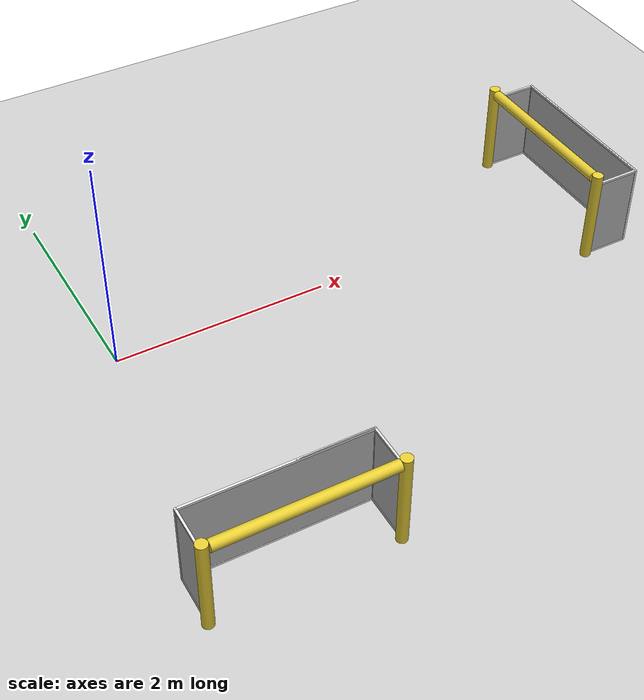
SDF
<sdf version="1.6">
 <world name="default">
  <model name="ground_plane">
   <static>1</static>
   <link name="link">
    <collision name="collision">
     <geometry><plane><normal>0 0 1</normal><size>100 100</size></plane></geometry>
     <surface>
      <contact><collide_bitmask>65535</collide_bitmask></contact>
      <friction><ode><mu>100</mu><mu2>50</mu2></ode></friction>
     </surface>
    </collision>
    <visual name="visual">
     <cast_shadows>0</cast_shadows>
     <geometry><plane><normal>0 0 1</normal><size>100 100</size></plane></geometry>
     <material>
      <script><uri>file://media/materials/scripts/gazebo.material</uri><name>Gazebo/Grey</name></script>
     </material>
    </visual>
   </link>
  </model>
  <model name="RoboCup 2014 SPL Goal">
   <static>1</static>
   <link name="left_post">
    <pose>0 0.8 0.45 0 -0 0</pose>
    <collision name="collision">
     <geometry><cylinder><radius>0.05</radius><length>0.9</length></cylinder></geometry>
    </collision>
    <visual name="visual">
     <geometry><cylinder><radius>0.05</radius><length>0.9</length></cylinder></geometry>
     <material>
      <script><uri>file://media/materials/scripts/gazebo.material</uri><name>Gazebo/ZincYellow</name></script>
     </material>
    </visual>
   </link>
   <link name="left_support_horiz_lower">
    <pose>0.24 0.8 0.01 0 -0 0</pose>
    <collision name="collision"><geometry><box><size>0.38 0.02 0.02</size></box></geometry></collision>
    <visual name="visual">
     <geometry><box><size>0.38 0.02 0.02</size></box></geometry>
     <material>
      <script><uri>file://media/materials/scripts/gazebo.material</uri><name>Gazebo/White</name></script>
     </material>
    </visual>
   </link>
   <link name="left_support_horiz_upper">
    <pose>0.24 0.8 0.79 0 -0 0</pose>
    <collision name="collision"><geometry><box><size>0.38 0.02 0.02</size></box></geometry></collision>
    <visual name="visual">
     <geometry><box><size>0.38 0.02 0.02</size></box></geometry>
     <material>
      <script><uri>file://media/materials/scripts/gazebo.material</uri><name>Gazebo/White</name></script>
     </material>
    </visual>
   </link>
   <link name="left_support_vertical">
    <pose>0.44 0.8 0.4 3.14159 1.57079 3.14159</pose>
    <collision name="collision"><geometry><box><size>0.8 0.02 0.02</size></box></geometry></collision>
    <visual name="visual">
     <geometry><box><size>0.8 0.02 0.02</size></box></geometry>
     <material>
      <script><uri>file://media/materials/scripts/gazebo.material</uri><name>Gazebo/White</name></script>
     </material>
    </visual>
   </link>
   <link name="right_support_horiz_lower">
    <pose>0.24 -0.8 0.01 0 -0 0</pose>
    <collision name="collision"><geometry><box><size>0.38 0.02 0.02</size></box></geometry></collision>
    <visual name="visual">
     <geometry><box><size>0.38 0.02 0.02</size></box></geometry>
     <material>
      <script><uri>file://media/materials/scripts/gazebo.material</uri><name>Gazebo/White</name></script>
     </material>
    </visual>
   </link>
   <link name="right_support_horiz_upper">
    <pose>0.24 -0.8 0.79 0 -0 0</pose>
    <collision name="collision"><geometry><box><size>0.38 0.02 0.02</size></box></geometry></collision>
    <visual name="visual">
     <geometry><box><size>0.38 0.02 0.02</size></box></geometry>
     <material>
      <script><uri>file://media/materials/scripts/gazebo.material</uri><name>Gazebo/White</name></script>
     </material>
    </visual>
   </link>
   <link name="right_support_vertical">
    <pose>0.44 -0.8 0.4 3.14159 1.57079 3.14159</pose>
    <collision name="collision"><geometry><box><size>0.8 0.02 0.02</size></box></geometry></collision>
    <visual name="visual">
     <geometry><box><size>0.8 0.02 0.02</size></box></geometry>
     <material>
      <script><uri>file://media/materials/scripts/gazebo.material</uri><name>Gazebo/White</name></script>
     </material>
    </visual>
   </link>
   <link name="center_support_horiz_lower">
    <pose>0.44 0 0.01 3.14159 1.57079 3.14159</pose>
    <collision name="collision"><geometry><box><size>0.02 1.58 0.02</size></box></geometry></collision>
    <visual name="visual">
     <geometry><box><size>0.02 1.58 0.02</size></box></geometry>
     <material>
      <script><uri>file://media/materials/scripts/gazebo.material</uri><name>Gazebo/White</name></script>
     </material>
    </visual>
   </link>
   <link name="center_support_horiz_upper">
    <pose>0.44 0 0.79 3.14159 1.57079 3.14159</pose>
    <collision name="collision"><geometry><box><size>0.02 1.58 0.02</size></box></geometry></collision>
    <visual name="visual">
     <geometry><box><size>0.02 1.58 0.02</size></box></geometry>
     <material>
      <script><uri>file://media/materials/scripts/gazebo.material</uri><name>Gazebo/White</name></script>
     </material>
    </visual>
   </link>
   <link name="right_post">
    <pose>0 -0.8 0.45 0 -0 0</pose>
    <collision name="collision">
     <geometry><cylinder><radius>0.05</radius><length>0.9</length></cylinder></geometry>
    </collision>
    <visual name="visual">
     <geometry><cylinder><radius>0.05</radius><length>0.9</length></cylinder></geometry>
     <material>
      <script><uri>file://media/materials/scripts/gazebo.material</uri><name>Gazebo/ZincYellow</name></script>
     </material>
    </visual>
   </link>
   <link name="crossbar">
    <pose>0 0 0.85 1.57 1.57 0</pose>
    <collision name="collision">
     <geometry><cylinder><radius>0.05</radius><length>1.5</length></cylinder></geometry>
    </collision>
    <visual name="visual">
     <geometry><cylinder><radius>0.05</radius><length>1.5</length></cylinder></geometry>
     <material>
      <script><uri>file://media/materials/scripts/gazebo.material</uri><name>Gazebo/ZincYellow</name></script>
     </material>
    </visual>
   </link>
   <link name="center_net">
    <pose>0.44 0 0.4 0 -0 0</pose>
    <collision name="collision"><geometry><box><size>0.01 1.6 0.8</size></box></geometry></collision>
    <visual name="visual">
     <geometry><box><size>0.01 1.6 0.8</size></box></geometry>
     <material>
      <script>
       <uri>model://robocup09_spl_field/materials/scripts/</uri>
       <uri>model://robocup09_spl_field/materials/textures/</uri>
       <name>RoboCup/Net</name>
      </script>
     </material>
    </visual>
   </link>
   <link name="left_net">
    <pose>0.24 0.8 0.4 0 -0 0</pose>
    <collision name="collision"><geometry><box><size>0.38 0.01 0.76</size></box></geometry></collision>
    <visual name="visual">
     <geometry><box><size>0.38 0.01 0.76</size></box></geometry>
     <material>
      <script>
       <uri>model://robocup09_spl_field/materials/scripts/</uri>
       <uri>model://robocup09_spl_field/materials/textures/</uri>
       <name>RoboCup/Net</name>
      </script>
     </material>
    </visual>
   </link>
   <link name="right_net">
    <pose>0.24 -0.8 0.4 0 -0 0</pose>
    <collision name="collision"><geometry><box><size>0.38 0.01 0.76</size></box></geometry></collision>
    <visual name="visual">
     <geometry><box><size>0.38 0.01 0.76</size></box></geometry>
     <material>
      <script>
       <uri>model://robocup09_spl_field/materials/scripts/</uri>
       <uri>model://robocup09_spl_field/materials/textures/</uri>
       <name>RoboCup/Net</name>
      </script>
     </material>
    </visual>
   </link>
   <pose>4.37127 0.011795 0 0 -0 0</pose>
  </model>
  <model name="RoboCup 2014 SPL Goal_0">
   <static>1</static>
   <link name="left_post">
    <pose>0 0.8 0.45 0 -0 0</pose>
    <collision name="collision">
     <geometry><cylinder><radius>0.05</radius><length>0.9</length></cylinder></geometry>
    </collision>
    <visual name="visual">
     <geometry><cylinder><radius>0.05</radius><length>0.9</length></cylinder></geometry>
     <material>
      <script><uri>file://media/materials/scripts/gazebo.material</uri><name>Gazebo/ZincYellow</name></script>
     </material>
    </visual>
   </link>
   <link name="left_support_horiz_lower">
    <pose>0.24 0.8 0.01 0 -0 0</pose>
    <collision name="collision"><geometry><box><size>0.38 0.02 0.02</size></box></geometry></collision>
    <visual name="visual">
     <geometry><box><size>0.38 0.02 0.02</size></box></geometry>
     <material>
      <script><uri>file://media/materials/scripts/gazebo.material</uri><name>Gazebo/White</name></script>
     </material>
    </visual>
   </link>
   <link name="left_support_horiz_upper">
    <pose>0.24 0.8 0.79 0 -0 0</pose>
    <collision name="collision"><geometry><box><size>0.38 0.02 0.02</size></box></geometry></collision>
    <visual name="visual">
     <geometry><box><size>0.38 0.02 0.02</size></box></geometry>
     <material>
      <script><uri>file://media/materials/scripts/gazebo.material</uri><name>Gazebo/White</name></script>
     </material>
    </visual>
   </link>
   <link name="left_support_vertical">
    <pose>0.44 0.8 0.4 3.14159 1.57079 3.14159</pose>
    <collision name="collision"><geometry><box><size>0.8 0.02 0.02</size></box></geometry></collision>
    <visual name="visual">
     <geometry><box><size>0.8 0.02 0.02</size></box></geometry>
     <material>
      <script><uri>file://media/materials/scripts/gazebo.material</uri><name>Gazebo/White</name></script>
     </material>
    </visual>
   </link>
   <link name="right_support_horiz_lower">
    <pose>0.24 -0.8 0.01 0 -0 0</pose>
    <collision name="collision"><geometry><box><size>0.38 0.02 0.02</size></box></geometry></collision>
    <visual name="visual">
     <geometry><box><size>0.38 0.02 0.02</size></box></geometry>
     <material>
      <script><uri>file://media/materials/scripts/gazebo.material</uri><name>Gazebo/White</name></script>
     </material>
    </visual>
   </link>
   <link name="right_support_horiz_upper">
    <pose>0.24 -0.8 0.79 0 -0 0</pose>
    <collision name="collision"><geometry><box><size>0.38 0.02 0.02</size></box></geometry></collision>
    <visual name="visual">
     <geometry><box><size>0.38 0.02 0.02</size></box></geometry>
     <material>
      <script><uri>file://media/materials/scripts/gazebo.material</uri><name>Gazebo/White</name></script>
     </material>
    </visual>
   </link>
   <link name="right_support_vertical">
    <pose>0.44 -0.8 0.4 3.14159 1.57079 3.14159</pose>
    <collision name="collision"><geometry><box><size>0.8 0.02 0.02</size></box></geometry></collision>
    <visual name="visual">
     <geometry><box><size>0.8 0.02 0.02</size></box></geometry>
     <material>
      <script><uri>file://media/materials/scripts/gazebo.material</uri><name>Gazebo/White</name></script>
     </material>
    </visual>
   </link>
   <link name="center_support_horiz_lower">
    <pose>0.44 0 0.01 3.14159 1.57079 3.14159</pose>
    <collision name="collision"><geometry><box><size>0.02 1.58 0.02</size></box></geometry></collision>
    <visual name="visual">
     <geometry><box><size>0.02 1.58 0.02</size></box></geometry>
     <material>
      <script><uri>file://media/materials/scripts/gazebo.material</uri><name>Gazebo/White</name></script>
     </material>
    </visual>
   </link>
   <link name="center_support_horiz_upper">
    <pose>0.44 0 0.79 3.14159 1.57079 3.14159</pose>
    <collision name="collision"><geometry><box><size>0.02 1.58 0.02</size></box></geometry></collision>
    <visual name="visual">
     <geometry><box><size>0.02 1.58 0.02</size></box></geometry>
     <material>
      <script><uri>file://media/materials/scripts/gazebo.material</uri><name>Gazebo/White</name></script>
     </material>
    </visual>
   </link>
   <link name="right_post">
    <pose>0 -0.8 0.45 0 -0 0</pose>
    <collision name="collision">
     <geometry><cylinder><radius>0.05</radius><length>0.9</length></cylinder></geometry>
    </collision>
    <visual name="visual">
     <geometry><cylinder><radius>0.05</radius><length>0.9</length></cylinder></geometry>
     <material>
      <script><uri>file://media/materials/scripts/gazebo.material</uri><name>Gazebo/ZincYellow</name></script>
     </material>
    </visual>
   </link>
   <link name="crossbar">
    <pose>0 0 0.85 1.57 1.57 0</pose>
    <collision name="collision">
     <geometry><cylinder><radius>0.05</radius><length>1.5</length></cylinder></geometry>
    </collision>
    <visual name="visual">
     <geometry><cylinder><radius>0.05</radius><length>1.5</length></cylinder></geometry>
     <material>
      <script><uri>file://media/materials/scripts/gazebo.material</uri><name>Gazebo/ZincYellow</name></script>
     </material>
    </visual>
   </link>
   <link name="center_net">
    <pose>0.44 0 0.4 0 -0 0</pose>
    <collision name="collision"><geometry><box><size>0.01 1.6 0.8</size></box></geometry></collision>
    <visual name="visual">
     <geometry><box><size>0.01 1.6 0.8</size></box></geometry>
     <material>
      <script>
       <uri>model://robocup09_spl_field/materials/scripts/</uri>
       <uri>model://robocup09_spl_field/materials/textures/</uri>
       <name>RoboCup/Net</name>
      </script>
     </material>
    </visual>
   </link>
   <link name="left_net">
    <pose>0.24 0.8 0.4 0 -0 0</pose>
    <collision name="collision"><geometry><box><size>0.38 0.01 0.76</size></box></geometry></collision>
    <visual name="visual">
     <geometry><box><size>0.38 0.01 0.76</size></box></geometry>
     <material>
      <script>
       <uri>model://robocup09_spl_field/materials/scripts/</uri>
       <uri>model://robocup09_spl_field/materials/textures/</uri>
       <name>RoboCup/Net</name>
      </script>
     </material>
    </visual>
   </link>
   <link name="right_net">
    <pose>0.24 -0.8 0.4 0 -0 0</pose>
    <collision name="collision"><geometry><box><size>0.38 0.01 0.76</size></box></geometry></collision>
    <visual name="visual">
     <geometry><box><size>0.38 0.01 0.76</size></box></geometry>
     <material>
      <script>
       <uri>model://robocup09_spl_field/materials/scripts/</uri>
       <uri>model://robocup09_spl_field/materials/textures/</uri>
       <name>RoboCup/Net</name>
      </script>
     </material>
    </visual>
   </link>
   <pose>0.317115 -2.80323 -0 0 -0 1.56097</pose>
  </model>
 </world>
</sdf>
